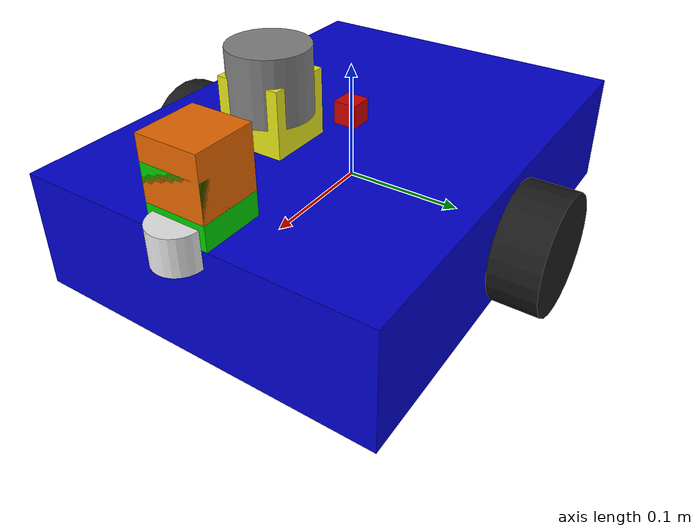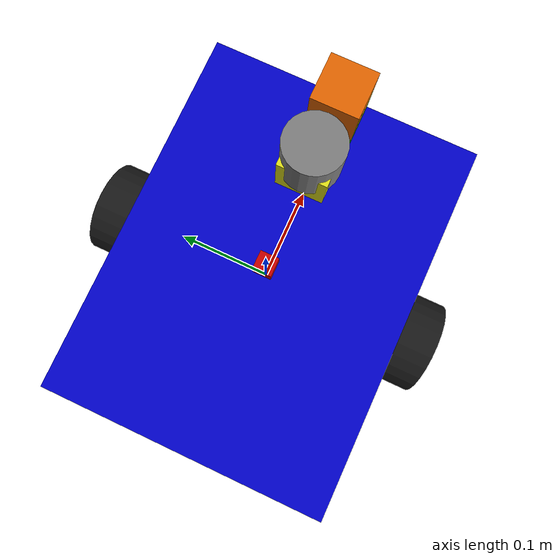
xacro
<?xml version="1.0"?>
<robot xmlns:xacro="http://www.ros.org/wiki/xacro" name="diff_drive_robot">

    <xacro:arg name="enable_rendering_sensors" default="false"/>

    <!-- Constants -->
    <xacro:property name="M_PI" value="3.1415926535897931" />
    <xacro:property name="base_width" value="0.3"/>
    <xacro:property name="base_length" value="0.4"/>
    <xacro:property name="base_height" value="0.1"/>
    <xacro:property name="wheel_radius" value="0.05"/>
    <xacro:property name="wheel_width" value="0.04"/>
    <xacro:property name="caster_radius" value="0.02"/>
    <xacro:property name="base_lift" value="0.01"/>
    <xacro:property name="camera_link_size" value="0.05"/>
    <xacro:property name="imu_link_size" value="0.02"/>
    <xacro:property name="thermal_link_size" value="0.05"/>
    <xacro:property name="radar_link_size" value="0.05"/>
    <xacro:property name="ultrasonic_link_size" value="0.03"/>

    <!-- Base Link -->
    <link name="base_link">
        <visual>
            <geometry>
                <box size="${base_length} ${base_width} ${base_height}"/>
            </geometry>
            <material name="blue">
                <color rgba="0.0 0.0 0.8 1.0"/>
            </material>
        </visual>
        <collision>
            <geometry>
                <box size="${base_length} ${base_width} ${base_height}"/>
            </geometry>
        </collision>
        <inertial>
            <origin xyz="0 0 0" rpy="0 0 0"/>
            <mass value="5.0"/>
            <inertia ixx="0.1" ixy="0.0" ixz="0.0" iyy="0.1" iyz="0.0" izz="0.1"/>
        </inertial>
    </link>

    <!-- IMU Link -->
    <link name="imu_link">
        <visual>
            <geometry>
                <box size="${imu_link_size} ${imu_link_size} ${imu_link_size}"/>
            </geometry>
            <material name="red">
                 <color rgba="0.8 0.0 0.0 1.0"/>
            </material>
        </visual>
         <collision>
            <geometry>
                <box size="${imu_link_size} ${imu_link_size} ${imu_link_size}"/>
            </geometry>
        </collision>
         <inertial>
            <mass value="0.01"/>
            <inertia ixx="1e-6" ixy="0.0" ixz="0.0" iyy="1e-6" iyz="0.0" izz="1e-6"/>
        </inertial>
    </link>

    <joint name="imu_joint" type="fixed">
        <parent link="base_link"/>
        <child link="imu_link"/>
        <origin xyz="0 0 ${base_height/2 + imu_link_size/2}" rpy="0 0 0"/>
    </joint>

    <!-- Camera Link -->
    <link name="camera_link">
        <visual>
            <geometry>
                <box size="${camera_link_size} ${camera_link_size} ${camera_link_size}"/>
            </geometry>
            <material name="green">
                <color rgba="0.0 0.8 0.0 1.0"/>
            </material>
        </visual>
        <collision>
            <geometry>
                <box size="${camera_link_size} ${camera_link_size} ${camera_link_size}"/>
            </geometry>
        </collision>
        <inertial>
             <mass value="0.1"/>
             <inertia ixx="1e-6" ixy="0.0" ixz="0.0" iyy="1e-6" iyz="0.0" izz="1e-6"/>
        </inertial>
    </link>

    <joint name="camera_joint" type="fixed">
        <parent link="base_link"/>
        <child link="camera_link"/>
        <origin xyz="${base_length/2 - camera_link_size/2} 0 ${base_height/2 + camera_link_size/2}" rpy="0 0 0"/>
    </joint>

    <!-- Camera Optical Frame -->
    <link name="camera_depth_optical_frame"/>
    <joint name="camera_optical_joint" type="fixed">
        <parent link="camera_link"/>
        <child link="camera_depth_optical_frame"/>
        <origin xyz="0 0 0" rpy="${-M_PI/2} 0 ${-M_PI/2}"/>
    </joint>

    <!-- Thermal camera link (simulated as monochrome camera) -->
    <link name="thermal_link">
        <visual>
            <geometry>
                <box size="${thermal_link_size} ${thermal_link_size} ${thermal_link_size}"/>
            </geometry>
            <material name="orange">
                <color rgba="0.9 0.4 0.0 1.0"/>
            </material>
        </visual>
        <collision>
            <geometry>
                <box size="${thermal_link_size} ${thermal_link_size} ${thermal_link_size}"/>
            </geometry>
        </collision>
        <inertial>
            <mass value="0.1"/>
            <inertia ixx="1e-6" ixy="0.0" ixz="0.0" iyy="1e-6" iyz="0.0" izz="1e-6"/>
        </inertial>
    </link>

    <joint name="thermal_joint" type="fixed">
        <parent link="base_link"/>
        <child link="thermal_link"/>
        <origin xyz="${base_length/2 - thermal_link_size/2} 0 ${base_height/2 + thermal_link_size/2 + 0.02}" rpy="0 0 0"/>
    </joint>

    <link name="thermal_optical_frame"/>
    <joint name="thermal_optical_joint" type="fixed">
        <parent link="thermal_link"/>
        <child link="thermal_optical_frame"/>
        <origin xyz="0 0 0" rpy="${-M_PI/2} 0 ${-M_PI/2}"/>
    </joint>

    <!-- mmWave radar link (simulated as low-res ray sensor -> PointCloud2) -->
    <link name="radar_link">
        <visual>
            <geometry>
                <box size="${radar_link_size} ${radar_link_size} ${radar_link_size}"/>
            </geometry>
            <material name="yellow">
                <color rgba="0.9 0.9 0.1 1.0"/>
            </material>
        </visual>
        <collision>
            <geometry>
                <box size="${radar_link_size} ${radar_link_size} ${radar_link_size}"/>
            </geometry>
        </collision>
        <inertial>
            <mass value="0.1"/>
            <inertia ixx="1e-6" ixy="0.0" ixz="0.0" iyy="1e-6" iyz="0.0" izz="1e-6"/>
        </inertial>
    </link>

    <joint name="radar_joint" type="fixed">
        <parent link="base_link"/>
        <child link="radar_link"/>
        <origin xyz="${base_length/4} 0 ${base_height/2 + radar_link_size/2 + 0.03}" rpy="0 0 0"/>
    </joint>

    <!-- Ultrasonic rangefinder (HC-SR04-like) -->
    <link name="ultrasonic_front_link">
        <visual>
            <geometry>
                <cylinder radius="0.02" length="${ultrasonic_link_size}"/>
            </geometry>
            <material name="white">
                <color rgba="0.9 0.9 0.9 1.0"/>
            </material>
        </visual>
        <collision>
            <geometry>
                <cylinder radius="0.02" length="${ultrasonic_link_size}"/>
            </geometry>
        </collision>
        <inertial>
            <mass value="0.05"/>
            <inertia ixx="1e-6" ixy="0.0" ixz="0.0" iyy="1e-6" iyz="0.0" izz="1e-6"/>
        </inertial>
    </link>

    <joint name="ultrasonic_front_joint" type="fixed">
        <parent link="base_link"/>
        <child link="ultrasonic_front_link"/>
        <origin xyz="${base_length/2} 0 ${base_height/2}" rpy="0 0 0"/>
    </joint>
        <!-- *** ADD LASER SCANNER LINK AND JOINT *** -->
    <link name="laser_link">
        <visual>
            <geometry>
                <cylinder radius="0.03" length="0.05"/>
            </geometry>
            <material name="grey">
                <color rgba="0.5 0.5 0.5 1.0"/>
            </material>
        </visual>
        <collision>
            <geometry>
                <cylinder radius="0.03" length="0.05"/>
            </geometry>
        </collision>
        <inertial>
            <mass value="0.1"/>
            <inertia ixx="1e-6" ixy="0.0" ixz="0.0" iyy="1e-6" iyz="0.0" izz="1e-6"/>
        </inertial>
    </link>

    <joint name="laser_joint" type="fixed">
        <parent link="base_link"/>
        <child link="laser_link"/>
        <!-- Position the laser slightly ahead of the base center and above it -->
        <origin xyz="${base_length/4} 0 ${base_height + 0.025}" rpy="0 0 0"/>
    </joint>
    <!-- *** END LASER SCANNER LINK AND JOINT *** -->
    <!-- Wheels -->
    <xacro:macro name="wheel" params="prefix reflect">
        <link name="${prefix}_wheel_link">
            <visual>
                <origin xyz="0 0 0" rpy="${M_PI/2} 0 0"/>
                <geometry>
                    <cylinder radius="${wheel_radius}" length="${wheel_width}"/>
                </geometry>
                <material name="black">
                    <color rgba="0.1 0.1 0.1 1.0"/>
                </material>
            </visual>
            <collision>
                 <origin xyz="0 0 0" rpy="${M_PI/2} 0 0"/>
                <geometry>
                    <cylinder radius="${wheel_radius}" length="${wheel_width}"/>
                </geometry>
            </collision>
             <inertial>
                <mass value="1.0"/>
                <inertia ixx="0.01" ixy="0.0" ixz="0.0" iyy="0.01" iyz="0.0" izz="0.01"/>
            </inertial>
        </link>

        <joint name="${prefix}_wheel_joint" type="continuous">
            <parent link="base_link"/>
            <child link="${prefix}_wheel_link"/>
            <origin xyz="0 ${reflect*(base_width/2 + wheel_width/2)} ${-(base_height/2) + wheel_radius - base_lift}" rpy="0 0 0"/>
            <axis xyz="0 1 0"/>
        </joint>
    </xacro:macro>

    <xacro:wheel prefix="left" reflect="1"/>
    <xacro:wheel prefix="right" reflect="-1"/>

    <!-- Casters -->
    <xacro:macro name="caster" params="prefix x_offset">
        <link name="${prefix}_caster_link">
            <visual>
                <geometry>
                    <sphere radius="${caster_radius}"/>
                </geometry>
                <material name="grey">
                    <color rgba="0.5 0.5 0.5 1.0"/>
                </material>
            </visual>
            <collision>
                <geometry>
                    <sphere radius="${caster_radius}"/>
                </geometry>
                <surface>
                    <friction>
                        <ode>
                            <mu>0.0</mu>
                            <mu2>0.0</mu2>
                            <slip1>1.0</slip1>
                            <slip2>1.0</slip2>
                        </ode>
                    </friction>
                </surface>
            </collision>
            <inertial>
                <mass value="0.5"/>
                <inertia ixx="0.001" ixy="0.0" ixz="0.0" iyy="0.001" iyz="0.0" izz="0.001"/>
            </inertial>
        </link>

        <joint name="${prefix}_caster_joint" type="fixed">
            <parent link="base_link"/>
            <child link="${prefix}_caster_link"/>
            <origin xyz="${x_offset} 0 ${-(base_height/2) + caster_radius - base_lift}" rpy="0 0 0"/>
        </joint>

        <gazebo reference="${prefix}_caster_link">
            <material>Gazebo/Grey</material>
            <mu1>0.0</mu1>
            <mu2>0.0</mu2>
            <slip1>1.0</slip1>
            <slip2>1.0</slip2>
        </gazebo>
    </xacro:macro>

    <xacro:caster prefix="front" x_offset="${base_length/2 - caster_radius}"/>
    <xacro:caster prefix="rear" x_offset="${-base_length/2 + caster_radius}"/>

    <!-- Gazebo Plugins -->
    <gazebo reference="base_link">
        <material>Gazebo/Blue</material>
    </gazebo>
    <gazebo reference="imu_link">
         <material>Gazebo/Red</material>
    </gazebo>
     <gazebo reference="camera_link">
         <material>Gazebo/Green</material>
    </gazebo>
    <gazebo reference="thermal_link">
         <material>Gazebo/Orange</material>
    </gazebo>
    <gazebo reference="radar_link">
         <material>Gazebo/Yellow</material>
    </gazebo>
    <gazebo reference="ultrasonic_front_link">
         <material>Gazebo/White</material>
    </gazebo>
    <gazebo reference="left_wheel_link">
        <material>Gazebo/Black</material>
    </gazebo>
    <gazebo reference="right_wheel_link">
        <material>Gazebo/Black</material>
    </gazebo>

    <!-- Differential Drive Plugin -->
    <gazebo>
        <plugin name="differential_drive_controller" filename="libgazebo_ros_diff_drive.so">
            <ros>
                <!-- Namespace is empty -->
            </ros>
            <update_rate>100</update_rate>
            <!-- wheels -->
            <left_joint>left_wheel_joint</left_joint>
            <right_joint>right_wheel_joint</right_joint>
            <!-- kinematics -->
            <wheel_separation>${base_width + wheel_width}</wheel_separation>
            <wheel_diameter>${2*wheel_radius}</wheel_diameter>
            <!-- limits -->
            <max_wheel_torque>20</max_wheel_torque>
            <max_wheel_acceleration>1.0</max_wheel_acceleration>
            <!-- output -->
            <odometry_frame>odom</odometry_frame>
            <robot_base_frame>base_link</robot_base_frame>
            <publish_odom>true</publish_odom>
            <publish_odom_tf>true</publish_odom_tf>
            <publish_wheel_tf>true</publish_wheel_tf>
            <publish_joint_states>true</publish_joint_states>
            <publish_tf>true</publish_tf>
        </plugin>
    </gazebo>

    <!-- IMU Plugin -->
    <gazebo reference="imu_link">
        <sensor name="imu_sensor" type="imu">
            <always_on>true</always_on>
            <update_rate>100</update_rate>
            <visualize>false</visualize>
            <plugin name="imu_plugin" filename="libgazebo_ros_imu_sensor.so">
                <ros>
                    <remapping>~/out:=imu/data</remapping>
                </ros>
                <initial_orientation_as_reference>false</initial_orientation_as_reference>
                <frame_name>imu_link</frame_name>
            </plugin>
            <pose>0 0 0 0 0 0</pose>
        </sensor>
    </gazebo>

    <xacro:if value="$(arg enable_rendering_sensors)">
        <!-- RGBD Camera Plugin -->
        <gazebo reference="camera_link">
            <sensor type="depth" name="camera">
                <always_on>true</always_on>
                <update_rate>20.0</update_rate>
                <camera name="sim_camera">
                    <horizontal_fov>${60.0*M_PI/180.0}</horizontal_fov>
                    <image>
                        <width>640</width>
                        <height>480</height>
                        <format>R8G8B8</format>
                    </image>
                    <clip>
                        <near>0.1</near>
                        <far>10.0</far>
                    </clip>
                    <noise>
                        <type>gaussian</type>
                        <mean>0.0</mean>
                        <stddev>0.007</stddev>
                    </noise>
                </camera>
                <plugin name="camera_plugin" filename="libgazebo_ros_camera.so">
                    <ros>
                        <remapping>image_raw:=rgb/image_rect_color</remapping>
                        <remapping>depth/image_raw:=depth/image_rect_raw</remapping>
                        <remapping>camera_info:=rgb/camera_info</remapping>
                        <remapping>depth/camera_info:=depth/camera_info</remapping>
                        <remapping>points:=depth/color/points</remapping>
                    </ros>
                    <camera_name>camera</camera_name>
                    <frame_name>camera_depth_optical_frame</frame_name>
                    <min_depth>0.1</min_depth>
                    <max_depth>10.0</max_depth>
                    <hack_baseline>0.0</hack_baseline>
                </plugin>
            </sensor>
        </gazebo>

        <!-- Thermal camera (simulated as grayscale image) -->
        <gazebo reference="thermal_link">
            <sensor type="camera" name="thermal_camera">
                <always_on>true</always_on>
                <update_rate>10.0</update_rate>
                <camera name="thermal_sim_camera">
                    <horizontal_fov>${60.0*M_PI/180.0}</horizontal_fov>
                    <image>
                        <width>320</width>
                        <height>240</height>
                        <format>L8</format>
                    </image>
                    <clip>
                        <near>0.1</near>
                        <far>10.0</far>
                    </clip>
                    <noise>
                        <type>gaussian</type>
                        <mean>0.0</mean>
                        <stddev>0.01</stddev>
                    </noise>
                </camera>
                <plugin name="thermal_camera_plugin" filename="libgazebo_ros_camera.so">
                    <ros>
                        <remapping>image_raw:=thermal/image_raw</remapping>
                        <remapping>camera_info:=thermal/camera_info</remapping>
                    </ros>
                    <camera_name>thermal</camera_name>
                    <frame_name>thermal_optical_frame</frame_name>
                </plugin>
            </sensor>
        </gazebo>
    </xacro:if>

<!-- *** ADD LASER SCANNER PLUGIN *** -->
    <gazebo reference="laser_link">
        <sensor type="ray" name="laser_sensor">
            <pose>0 0 0 0 0 0</pose>
            <visualize>true</visualize> <!-- Set to true to see rays in Gazebo -->
            <update_rate>10</update_rate> <!-- Scan rate Hz -->
            <ray>
                <scan>
                    <horizontal>
                        <samples>360</samples> <!-- Number of rays per scan -->
                        <resolution>1</resolution> <!-- Should be 1 -->
                        <min_angle>-${M_PI}</min_angle> <!-- -180 degrees -->
                        <max_angle>${M_PI}</max_angle>  <!-- +180 degrees -->
                    </horizontal>
                </scan>
                <range>
                    <min>0.10</min> <!-- Minimum range -->
                    <max>12.0</max> <!-- Maximum range -->
                    <resolution>0.01</resolution> <!-- Range resolution -->
                </range>
                <noise>
                    <type>gaussian</type>
                    <mean>0.0</mean>
                    <stddev>0.01</stddev>
                </noise>
            </ray>
            <plugin name="gazebo_ros_laser_controller" filename="libgazebo_ros_ray_sensor.so">
                <ros>
                    <!-- Use 'scan' as the topic name -->
                    <remapping>~/out:=scan</remapping>
                </ros>
                <!-- Set the frame ID to the laser link -->
                <frame_name>laser_link</frame_name>
                <!-- Set output type to LaserScan -->
                <output_type>sensor_msgs/LaserScan</output_type>
            </plugin>
        </sensor>
    </gazebo>
    <!-- *** END LASER SCANNER PLUGIN *** -->

    <!-- Navigation radar obstacle cloud (ray sensor). The human-detection mmWave
         radar is synthesized in project_sim/simulated_mmwave_radar_node.py. -->
    <gazebo reference="radar_link">
        <sensor type="ray" name="radar_sensor">
            <pose>0 0 0 0 0 0</pose>
            <visualize>false</visualize>
            <update_rate>5</update_rate>
            <ray>
                <scan>
                    <horizontal>
                        <samples>60</samples>
                        <resolution>1</resolution>
                        <min_angle>-${M_PI/3}</min_angle>
                        <max_angle>${M_PI/3}</max_angle>
                    </horizontal>
                </scan>
                <range>
                    <min>0.2</min>
                    <max>5.0</max>
                    <resolution>0.05</resolution>
                </range>
                <noise>
                    <type>gaussian</type>
                    <mean>0.0</mean>
                    <stddev>0.05</stddev>
                </noise>
            </ray>
            <plugin name="gazebo_ros_radar_controller" filename="libgazebo_ros_ray_sensor.so">
                <ros>
                    <remapping>~/out:=radar/environment_points</remapping>
                </ros>
                <frame_name>radar_link</frame_name>
                <output_type>sensor_msgs/PointCloud2</output_type>
            </plugin>
        </sensor>
    </gazebo>

    <!-- Ultrasonic range (Range message) -->
    <gazebo reference="ultrasonic_front_link">
        <sensor type="ray" name="ultrasonic_front">
            <pose>0 0 0 0 0 0</pose>
            <visualize>false</visualize>
            <update_rate>10</update_rate>
            <ray>
                <scan>
                    <horizontal>
                        <samples>1</samples>
                        <resolution>1</resolution>
                        <min_angle>0</min_angle>
                        <max_angle>0</max_angle>
                    </horizontal>
                </scan>
                <range>
                    <min>0.02</min>
                    <max>4.0</max>
                    <resolution>0.01</resolution>
                </range>
                <noise>
                    <type>gaussian</type>
                    <mean>0.0</mean>
                    <stddev>0.01</stddev>
                </noise>
            </ray>
            <plugin name="ultrasonic_front_plugin" filename="libgazebo_ros_range.so">
                <ros>
                    <remapping>~/out:=ultrasonic/front</remapping>
                </ros>
                <frame_name>ultrasonic_front_link</frame_name>
                <radiation_type>ultrasound</radiation_type>
            </plugin>
        </sensor>
    </gazebo>

</robot>
